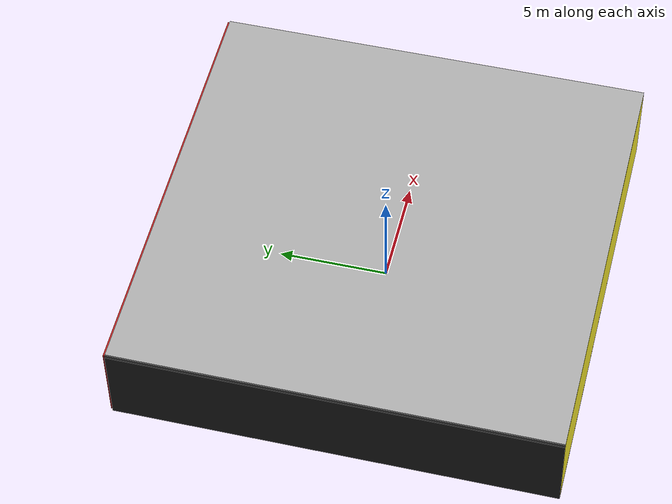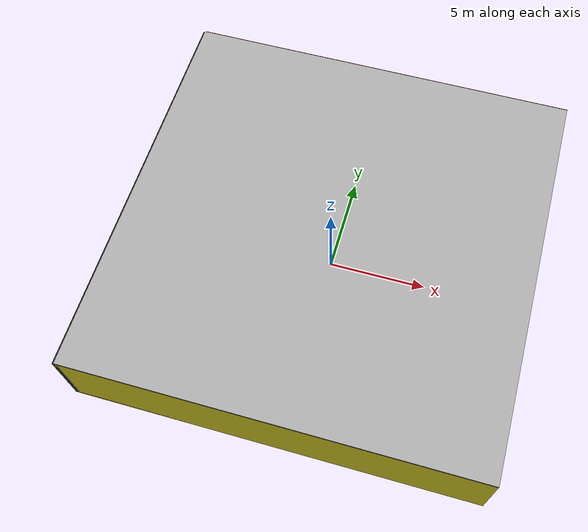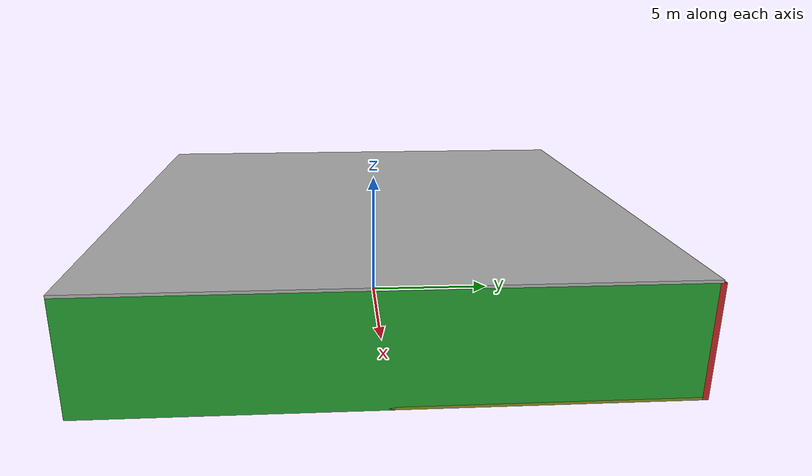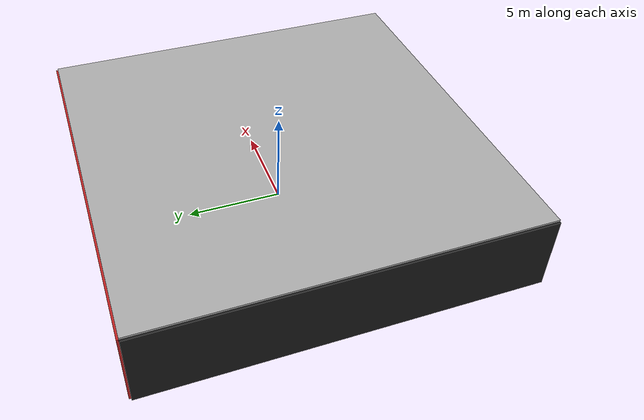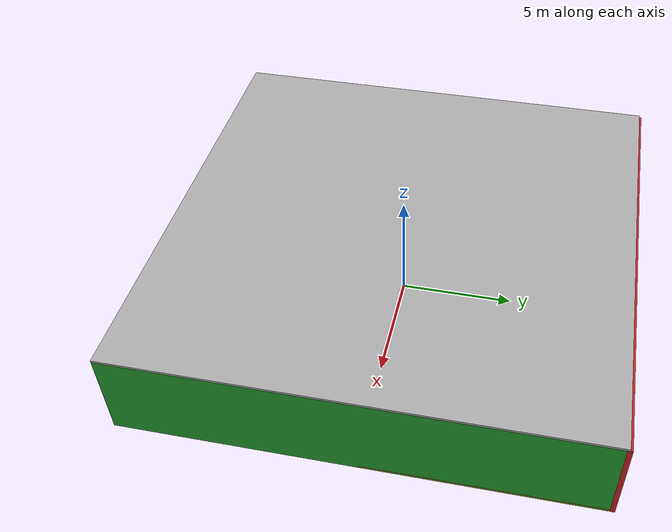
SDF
<sdf version="1.4">
 <world name="default">
  <physics type="ode">
   <max_step_size>0.001</max_step_size>
   <real_time_factor>1</real_time_factor>
   <real_time_update_rate>1000</real_time_update_rate>
   <gravity>0 0 -9.8</gravity>
  </physics>
  <scene><ambient>0.4 0.4 0.4 1</ambient><background>0.7 0.7 0.7 1</background><shadows>1</shadows></scene>
  <model name="Surrounding">
   <static>1</static>
   <link name="Ceiling">
    <collision name="Ceiling_Collision"><geometry><box><size>20 20 0.1</size></box></geometry></collision>
    <visual name="Ceiling_Visual">
     <geometry><box><size>20 20 0.1</size></box></geometry>
     <material>
      <script><uri>file://media/materials/scripts/gazebo.material</uri><name>Gazebo/LightOn</name></script>
     </material>
    </visual>
    <pose>0 0 4.05 0 0 0</pose>
   </link>
   <link name="Wall_South">
    <collision name="Wall_South_Collision">
     <geometry><box><size>20 0 4</size></box></geometry>
     <pose>0 0 2 0 -0 0</pose>
    </collision>
    <visual name="Wall_South_Visual">
     <pose>0 0 2 0 -0 0</pose>
     <geometry><box><size>20 0 4</size></box></geometry>
     <material>
      <script><uri>file://media/materials/scripts/gazebo.material</uri><name>Gazebo/YellowGlow</name></script>
     </material>
    </visual>
    <velocity_decay><linear>0</linear><angular>0</angular></velocity_decay>
    <pose>0 -10 0 0 -0 0</pose>
   </link>
   <link name="Wall_East">
    <collision name="Wall_21_Collision">
     <geometry><box><size>20 0 4</size></box></geometry>
     <pose>0 0 2 0 -0 0</pose>
    </collision>
    <visual name="Wall_21_Visual">
     <pose>0 0 2 0 -0 0</pose>
     <geometry><box><size>20 0 4</size></box></geometry>
     <material>
      <script><uri>file://media/materials/scripts/gazebo.material</uri><name>Gazebo/Green</name></script>
     </material>
    </visual>
    <velocity_decay><linear>0</linear><angular>0</angular></velocity_decay>
    <pose>10 0 0 0 -0 1.5708</pose>
   </link>
   <link name="Wall_North">
    <collision name="Wall_22_Collision">
     <geometry><box><size>20 0.2 4</size></box></geometry>
     <pose>0 0 2 0 -0 0</pose>
    </collision>
    <visual name="Wall_22_Visual">
     <pose>0 0 2 0 -0 0</pose>
     <geometry><box><size>20 0.2 4</size></box></geometry>
     <material>
      <script><uri>file://media/materials/scripts/gazebo.material</uri><name>Gazebo/Red</name></script>
     </material>
    </visual>
    <velocity_decay><linear>0</linear><angular>0</angular></velocity_decay>
    <pose>0 10 0 0 -0 0</pose>
   </link>
   <link name="Wall_West">
    <collision name="Wall_23_Collision">
     <geometry><box><size>20 0.2 4</size></box></geometry>
     <pose>0 0 2 0 -0 0</pose>
    </collision>
    <visual name="Wall_23_Visual">
     <pose>0 0 2 0 -0 0</pose>
     <geometry><box><size>20 0.2 4</size></box></geometry>
     <material>
      <script><uri>file://media/materials/scripts/gazebo.material</uri><name>Gazebo/Black</name></script>
     </material>
    </visual>
    <velocity_decay><linear>0</linear><angular>0</angular></velocity_decay>
    <pose>-10 0 0 0 0 -1.5708</pose>
   </link>
   <link name="Ground_link">
    <collision name="collision">
     <pose>0 0 .05 0 -0 0</pose>
     <geometry><box><size>20 20 0.1</size></box></geometry>
    </collision>
    <visual name="visual">
     <pose>0 0 .05 0 -0 0</pose>
     <geometry><box><size>20 20 0.1</size></box></geometry>
     <material>
      <script>
       <uri>file://media/materials/scripts/gazebo.material</uri>
       <name>Gazebo/OrangeTransparent</name>
      </script>
     </material>
    </visual>
   </link>
   <static>1</static>
  </model>
  <spherical_coordinates>
   <surface_model>EARTH_WGS84</surface_model>
   <latitude_deg>0</latitude_deg>
   <longitude_deg>0</longitude_deg>
   <elevation>0</elevation>
   <heading_deg>0</heading_deg>
  </spherical_coordinates>
  <light name="lightball_0" type="diffuse">
   <diffuse>0.8 0.8 0.8 1</diffuse>
   <specular>0.2 0.2 0.2 1</specular>
   <attenuation>
    <range>100</range>
    <constant>0.7</constant>
    <linear>0.01</linear>
    <quadratic>0.001</quadratic>
   </attenuation>
   <direction>-0.5 0.1 -0.9</direction>
   <pose>1.91668351571 7.87480804494 0.568232072547 0 0 0</pose>
  </light>
  <light name="lightball_1" type="diffuse">
   <diffuse>0.8 0.8 0.8 1</diffuse>
   <specular>0.2 0.2 0.2 1</specular>
   <attenuation>
    <range>100</range>
    <constant>0.7</constant>
    <linear>0.01</linear>
    <quadratic>0.001</quadratic>
   </attenuation>
   <direction>-0.5 0.1 -0.9</direction>
   <pose>0.474328206166 -3.77290763971 3.65737825424 0 0 0</pose>
  </light>
  <light name="lightball_2" type="diffuse">
   <diffuse>0.8 0.8 0.8 1</diffuse>
   <specular>0.2 0.2 0.2 1</specular>
   <attenuation>
    <range>100</range>
    <constant>0.7</constant>
    <linear>0.01</linear>
    <quadratic>0.001</quadratic>
   </attenuation>
   <direction>-0.5 0.1 -0.9</direction>
   <pose>-7.88221282109 8.53461682668 2.80226639225 0 0 0</pose>
  </light>
  <light name="lightball_3" type="diffuse">
   <diffuse>0.8 0.8 0.8 1</diffuse>
   <specular>0.2 0.2 0.2 1</specular>
   <attenuation>
    <range>100</range>
    <constant>0.7</constant>
    <linear>0.01</linear>
    <quadratic>0.001</quadratic>
   </attenuation>
   <direction>-0.5 0.1 -0.9</direction>
   <pose>-0.742465682293 8.51427892478 1.32684067187 0 0 0</pose>
  </light>
  <light name="lightball_4" type="diffuse">
   <diffuse>0.8 0.8 0.8 1</diffuse>
   <specular>0.2 0.2 0.2 1</specular>
   <attenuation>
    <range>100</range>
    <constant>0.7</constant>
    <linear>0.01</linear>
    <quadratic>0.001</quadratic>
   </attenuation>
   <direction>-0.5 0.1 -0.9</direction>
   <pose>-5.36085913086 -8.32079177307 2.30347614898 0 0 0</pose>
  </light>
  <light name="lightball_5" type="diffuse">
   <diffuse>0.8 0.8 0.8 1</diffuse>
   <specular>0.2 0.2 0.2 1</specular>
   <attenuation>
    <range>100</range>
    <constant>0.7</constant>
    <linear>0.01</linear>
    <quadratic>0.001</quadratic>
   </attenuation>
   <direction>-0.5 0.1 -0.9</direction>
   <pose>7.69936865644 -6.35823971582 3.23849896856 0 0 0</pose>
  </light>
  <light name="lightball_6" type="diffuse">
   <diffuse>0.8 0.8 0.8 1</diffuse>
   <specular>0.2 0.2 0.2 1</specular>
   <attenuation>
    <range>100</range>
    <constant>0.7</constant>
    <linear>0.01</linear>
    <quadratic>0.001</quadratic>
   </attenuation>
   <direction>-0.5 0.1 -0.9</direction>
   <pose>3.45476143835 6.64260894695 2.07642766876 0 0 0</pose>
  </light>
  <light name="lightball_7" type="diffuse">
   <diffuse>0.8 0.8 0.8 1</diffuse>
   <specular>0.2 0.2 0.2 1</specular>
   <attenuation>
    <range>100</range>
    <constant>0.7</constant>
    <linear>0.01</linear>
    <quadratic>0.001</quadratic>
   </attenuation>
   <direction>-0.5 0.1 -0.9</direction>
   <pose>4.10484867713 -5.40962190048 1.28292668041 0 0 0</pose>
  </light>
  <light name="lightball_8" type="diffuse">
   <diffuse>0.8 0.8 0.8 1</diffuse>
   <specular>0.2 0.2 0.2 1</specular>
   <attenuation>
    <range>100</range>
    <constant>0.7</constant>
    <linear>0.01</linear>
    <quadratic>0.001</quadratic>
   </attenuation>
   <direction>-0.5 0.1 -0.9</direction>
   <pose>-7.11934564849 -5.26174860043 3.2499556085 0 0 0</pose>
  </light>
  <light name="lightball_9" type="diffuse">
   <diffuse>0.8 0.8 0.8 1</diffuse>
   <specular>0.2 0.2 0.2 1</specular>
   <attenuation>
    <range>100</range>
    <constant>0.7</constant>
    <linear>0.01</linear>
    <quadratic>0.001</quadratic>
   </attenuation>
   <direction>-0.5 0.1 -0.9</direction>
   <pose>-2.26490281574 1.71689280371 1.0383913574 0 0 0</pose>
  </light>
  <include>
   <uri>model://robocup_3Dsim_goal</uri>
   <pose>-7.58422178867 -7.04496059674 0 0 0 2.29342090633</pose>
  </include>
 </world>
</sdf>

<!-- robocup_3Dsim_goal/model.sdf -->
<sdf version="1.5">
  <model name="robocup_3d_goal">
    <static>true</static>
    <link name="left_post">
      <pose>0 1.05 0.45 0 0 0</pose>
      <collision name="collision">
        <geometry>
          <cylinder>
            <radius>0.05</radius>
            <length>0.9</length>
          </cylinder>
        </geometry>
      </collision>
      <visual name="visual">
        <geometry>
          <cylinder>
            <radius>0.05</radius>
            <length>0.9</length>
          </cylinder>
        </geometry>
        <material>
          <script>
            <uri>file://media/materials/scripts/gazebo.material</uri>
            <name>Gazebo/ZincYellow</name>
          </script>
        </material>
      </visual>
    </link>
    <link name="left_support_horiz_lower">
      <pose>0.30 1.05 0.01 0 0 0</pose>
      <collision name="collision">
        <geometry>
          <box>
            <size>0.50 0.02 0.02</size>
          </box>
        </geometry>
      </collision>
      <visual name="visual">
        <geometry>
          <box>
            <size>0.50 0.02 0.02</size>
          </box>
        </geometry>
        <material>
          <script>
            <uri>file://media/materials/scripts/gazebo.material</uri>
            <name>Gazebo/White</name>
          </script>
        </material>
      </visual>
    </link>
    <link name="left_support_horiz_upper">
      <pose>0.30 1.05 0.79 0 0 0</pose>
      <collision name="collision">
        <geometry>
          <box>
            <size>0.50 0.02 0.02</size>
          </box>
        </geometry>
      </collision>
      <visual name="visual">
        <geometry>
          <box>
            <size>0.50 0.02 0.02</size>
          </box>
        </geometry>
        <material>
          <script>
            <uri>file://media/materials/scripts/gazebo.material</uri>
            <name>Gazebo/White</name>
          </script>
        </material>
      </visual>
    </link>
    <link name="left_support_vertical">
      <pose>0.56 1.05 0.4 0 1.5708 0</pose>
      <collision name="collision">
        <geometry>
          <box>
            <size>0.80 0.02 0.02</size>
          </box>
        </geometry>
      </collision>
      <visual name="visual">
        <geometry>
          <box>
            <size>0.80 0.02 0.02</size>
          </box>
        </geometry>
        <material>
          <script>
            <uri>file://media/materials/scripts/gazebo.material</uri>
            <name>Gazebo/White</name>
          </script>
        </material>
      </visual>
    </link>
    <link name="right_support_horiz_lower">
      <pose>0.30 -1.05 0.01 0 0 0</pose>
      <collision name="collision">
        <geometry>
          <box>
            <size>0.50 0.02 0.02</size>
          </box>
        </geometry>
      </collision>
      <visual name="visual">
        <geometry>
          <box>
            <size>0.50 0.02 0.02</size>
          </box>
        </geometry>
        <material>
          <script>
            <uri>file://media/materials/scripts/gazebo.material</uri>
            <name>Gazebo/White</name>
          </script>
        </material>
      </visual>
    </link>
    <link name="right_support_horiz_upper">
      <pose>0.30 -1.05 0.79 0 0 0</pose>
      <collision name="collision">
        <geometry>
          <box>
            <size>0.50 0.02 0.02</size>
          </box>
        </geometry>
      </collision>
      <visual name="visual">
        <geometry>
          <box>
            <size>0.50 0.02 0.02</size>
          </box>
        </geometry>
        <material>
          <script>
            <uri>file://media/materials/scripts/gazebo.material</uri>
            <name>Gazebo/White</name>
          </script>
        </material>
      </visual>
    </link>
    <link name="right_support_vertical">
      <pose>0.56 -1.05 0.4 0 1.5708 0</pose>
      <collision name="collision">
        <geometry>
          <box>
            <size>0.80 0.02 0.02</size>
          </box>
        </geometry>
      </collision>
      <visual name="visual">
        <geometry>
          <box>
            <size>0.80 0.02 0.02</size>
          </box>
        </geometry>
        <material>
          <script>
            <uri>file://media/materials/scripts/gazebo.material</uri>
            <name>Gazebo/White</name>
          </script>
        </material>
      </visual>
    </link>
    <link name="center_support_horiz_lower">
      <pose>0.56 0 0.01 0 1.5708 0</pose>
      <collision name="collision">
        <geometry>
          <box>
            <size>0.02 2.08 0.02</size>
          </box>
        </geometry>
      </collision>
      <visual name="visual">
        <geometry>
          <box>
            <size>0.02 2.08 0.02</size>
          </box>
        </geometry>
        <material>
          <script>
            <uri>file://media/materials/scripts/gazebo.material</uri>
            <name>Gazebo/White</name>
          </script>
        </material>
      </visual>
    </link>
    <link name="center_support_horiz_upper">
      <pose>0.56 0 0.79 0 1.5708 0</pose>
      <collision name="collision">
        <geometry>
          <box>
            <size>0.02 2.08 0.02</size>
          </box>
        </geometry>
      </collision>
      <visual name="visual">
        <geometry>
          <box>
            <size>0.02 2.08 0.02</size>
          </box>
        </geometry>
        <material>
          <script>
            <uri>file://media/materials/scripts/gazebo.material</uri>
            <name>Gazebo/White</name>
          </script>
        </material>
      </visual>
    </link>
    <link name="right_post">
      <pose>0 -1.05 0.45 0 0 0</pose>
      <collision name="collision">
        <geometry>
          <cylinder>
            <radius>0.05</radius>
            <length>0.9</length>
          </cylinder>
        </geometry>
      </collision>
      <visual name="visual">
        <geometry>
          <cylinder>
            <radius>0.05</radius>
            <length>0.9</length>
          </cylinder>
        </geometry>
        <material>
          <script>
            <uri>file://media/materials/scripts/gazebo.material</uri>
            <name>Gazebo/ZincYellow</name>
          </script>
        </material>
      </visual>
    </link>
    <link name="crossbar">
      <pose>0 0 0.85 1.57 1.57 0</pose>
      <collision name="collision">
        <geometry>
          <cylinder>
            <radius>0.05</radius>
            <length>2.0</length>
          </cylinder>
        </geometry>
      </collision>
      <visual name="visual">
        <geometry>
          <cylinder>
            <radius>0.05</radius>
            <length>2.0</length>
          </cylinder>
        </geometry>
        <material>
          <script>
            <uri>file://media/materials/scripts/gazebo.material</uri>
            <name>Gazebo/ZincYellow</name>
          </script>
        </material>
      </visual>
    </link>
    <link name="center_net">
      <pose>0.56 0 0.40 0 0 0</pose>
      <collision name="collision">
        <geometry>
          <box>
            <size>0.01 2.1 0.80</size>
          </box>
        </geometry>
      </collision>
      <visual name="visual">
        <geometry>
          <box>
            <size>0.01 2.1 0.80</size>
          </box>
        </geometry>
        <material>
          <script>
            <uri>model://../model_source/models/robocup09_spl_field/materials/scripts/</uri>
            <uri>model://../model_source/models/robocup09_spl_field/materials/textures/</uri>
            <name>RoboCup/Net</name>
          </script>
        </material>
      </visual>
    </link>
    <link name="left_net">
      <pose>0.30 1.05 0.40 0 0 0</pose>
      <collision name="collision">
        <geometry>
          <box>
            <size>0.50 0.01 0.76</size>
          </box>
        </geometry>
      </collision>
      <visual name="visual">
        <geometry>
          <box>
            <size>0.50 0.01 0.76</size>
          </box>
        </geometry>
        <material>
          <script>
            <uri>model://../model_source/models/robocup09_spl_field/materials/scripts/</uri>
            <uri>model://../model_source/models/robocup09_spl_field/materials/textures/</uri>
            <name>RoboCup/Net</name>
          </script>
        </material>
      </visual>
    </link>
    <link name="right_net">
      <pose>0.30 -1.05 0.40 0 0 0</pose>
      <collision name="collision">
        <geometry>
          <box>
            <size>0.50 0.01 0.76</size>
          </box>
        </geometry>
      </collision>
      <visual name="visual">
        <geometry>
          <box>
            <size>0.50 0.01 0.76</size>
          </box>
        </geometry>
        <material>
          <script>
            <uri>model://../model_source/models/robocup09_spl_field/materials/scripts/</uri>
            <uri>model://../model_source/models/robocup09_spl_field/materials/textures/</uri>
            <name>RoboCup/Net</name>
          </script>
        </material>
      </visual>
    </link>
  </model>
</sdf>
